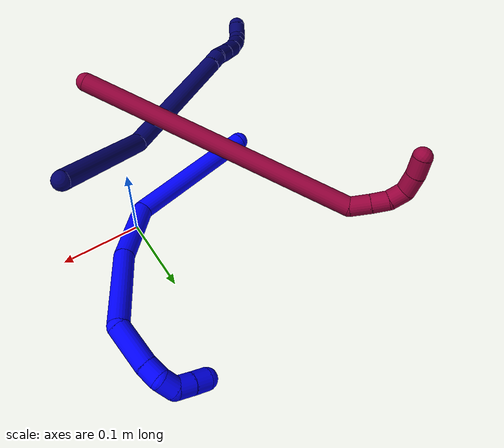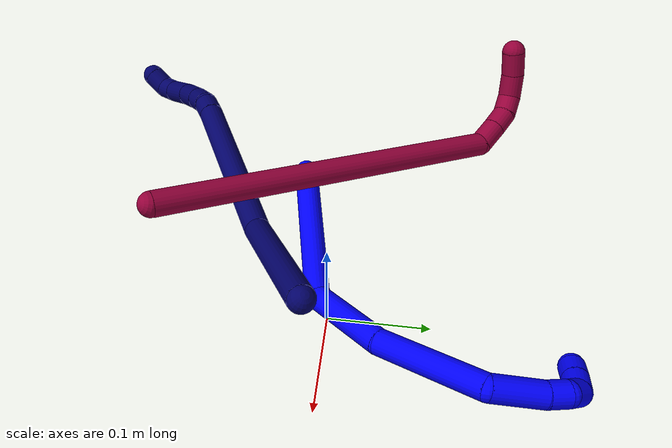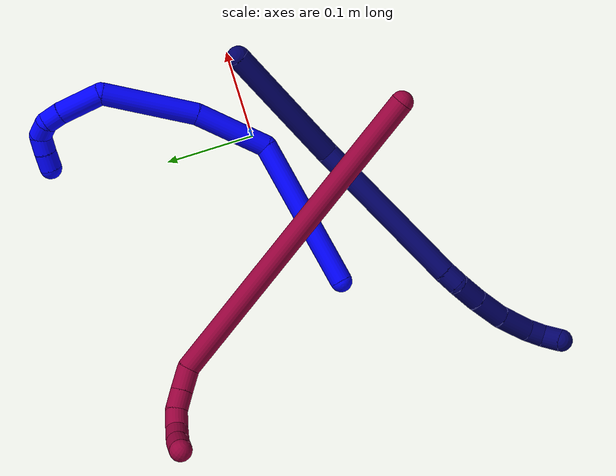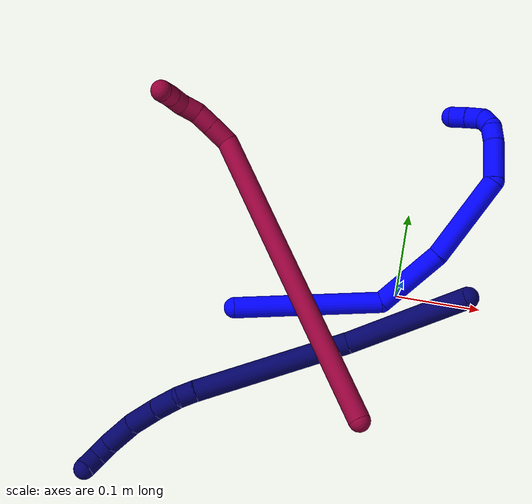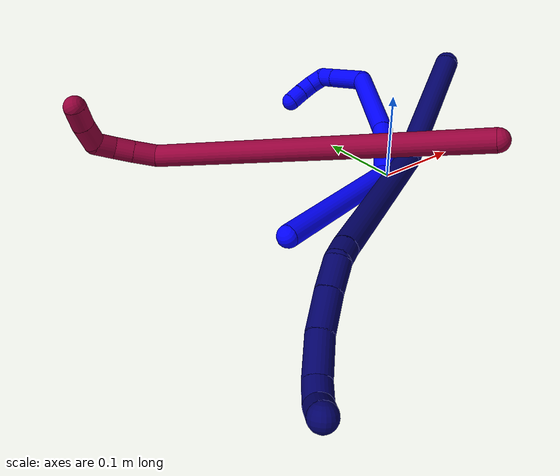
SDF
<sdf version="1.7">
 <world name="default">
  <model name="photoneo_s_sensor">
   <static>1</static>
   <pose>0 0 2 1.57079 1.57079 3.14159</pose>
   <link name="link">
    <inertial><mass>0.1</mass></inertial>
    <sensor name="sensor" type="depth">
     <update_rate>30</update_rate>
     <camera>
      <horizontal_fov>1.22</horizontal_fov>
      <image><width>1920</width><height>1200</height><format>B8G8R8</format></image>
      <clip><near>0.1</near><far>4</far></clip>
      <depth_camera><output>points</output></depth_camera>
     </camera>
     <plugin name="camera_plugin" filename="libgazebo_ros_depth_camera.so">
      <baseline>0.2</baseline>
      <alwaysOn>1</alwaysOn>
      <updateRate>0.0</updateRate>
      <cameraName>camera_ir</cameraName>
      <imageTopicName>/camera/color/image_raw</imageTopicName>
      <cameraInfoTopicName>/camera/color/camera_info</cameraInfoTopicName>
      <depthImageTopicName>/camera/depth/image_raw</depthImageTopicName>
      <depthImageCameraInfoTopicName>/camera/depth/camera_info</depthImageCameraInfoTopicName>
      <pointCloudTopicName>/camera/depth/points</pointCloudTopicName>
      <frameName>fr_optical</frameName>
      <pointCloudCutoff>0.1</pointCloudCutoff>
      <pointCloudCutoffMax>2.0</pointCloudCutoffMax>
      <distortionK1>0</distortionK1>
      <distortionK2>0</distortionK2>
      <distortionK3>0</distortionK3>
      <distortionT1>0</distortionT1>
      <distortionT2>0</distortionT2>
      <CxPrime>0</CxPrime>
      <Cx>0</Cx>
      <Cy>0</Cy>
      <focalLength>0</focalLength>
      <hackBaseline>0</hackBaseline>
     </plugin>
    </sensor>
   </link>
  </model>
  <model name="bin">
   <static>1</static>
   <link name="bottom">
    <collision name="collision-bottom">
     <pose>0 0 -0.01 0 -0 0</pose>
     <geometry><box><size>0.8 0.6 0.02</size></box></geometry>
     <surface>
      <friction><ode><mu>100</mu><mu2>100</mu2></ode></friction>
      <contact><collide_bitmask>65535</collide_bitmask></contact>
     </surface>
    </collision>
   </link>
   <link name="west_wall">
    <collision name="collision-west_wall">
     <pose>-0.41 0 0.1 0 -0 0</pose>
     <geometry><box><size>0.02 0.6 0.2</size></box></geometry>
     <surface>
      <friction><ode><mu>100</mu><mu2>100</mu2></ode></friction>
      <contact><collide_bitmask>65535</collide_bitmask></contact>
     </surface>
    </collision>
   </link>
   <link name="east_wall">
    <collision name="collision-east_wall">
     <pose>0.41 0 0.1 0 -0 0</pose>
     <geometry><box><size>0.02 0.6 0.2</size></box></geometry>
     <surface>
      <friction><ode><mu>100</mu><mu2>100</mu2></ode></friction>
      <contact><collide_bitmask>65535</collide_bitmask></contact>
     </surface>
    </collision>
   </link>
   <link name="south_wall">
    <collision name="collision-south_wall">
     <pose>0 -0.31 0.1 0 -0 0</pose>
     <geometry><box><size>0.8 0.02 0.2</size></box></geometry>
     <surface>
      <friction><ode><mu>100</mu><mu2>100</mu2></ode></friction>
      <contact><collide_bitmask>65535</collide_bitmask></contact>
     </surface>
    </collision>
   </link>
   <link name="north_wall">
    <collision name="collision-north_wall">
     <pose>0 0.31 0.1 0 -0 0</pose>
     <geometry><box><size>0.8 0.02 0.2</size></box></geometry>
     <surface>
      <friction><ode><mu>100</mu><mu2>100</mu2></ode></friction>
      <contact><collide_bitmask>65535</collide_bitmask></contact>
     </surface>
    </collision>
   </link>
  </model>
  <model name="1">
   <static>0</static>
   <link name="1">
    <collision name="collision-cylinder-e_1_1_4">
     <pose>0.072469 0.012462 -0.046433 -2.87939 0.985058 -2.65972</pose>
     <geometry><cylinder><radius>0.0125</radius><length>0.173933</length></cylinder></geometry>
     <surface>
      <friction><ode><mu>1.16</mu><mu2>1.16</mu2><slip1>0</slip1><slip2>0</slip2></ode></friction>
      <contact><ode><kp>1e+06</kp><kd>1</kd><max_vel>0</max_vel><min_depth>0.001</min_depth></ode></contact>
     </surface>
    </collision>
    <visual name="visual-cylinder-e_1_1_4">
     <pose>0.072469 0.012462 -0.046433 -2.87939 0.985058 -2.65972</pose>
     <geometry><cylinder><radius>0.0125</radius><length>0.173933</length></cylinder></geometry>
     <material><ambient>0 0 1 1</ambient></material>
    </visual>
    <collision name="collision-cylinder-e_2_4_5">
     <pose>0.174796 0.054861 -0.101504 -1.85169 0.764071 -0.981082</pose>
     <geometry><cylinder><radius>0.0125</radius><length>0.08631</length></cylinder></geometry>
     <surface>
      <friction><ode><mu>1.16</mu><mu2>1.16</mu2><slip1>0</slip1><slip2>0</slip2></ode></friction>
      <contact><ode><kp>1e+06</kp><kd>1</kd><max_vel>0</max_vel><min_depth>0.001</min_depth></ode></contact>
     </surface>
    </collision>
    <visual name="visual-cylinder-e_2_4_5">
     <pose>0.174796 0.054861 -0.101504 -1.85169 0.764071 -0.981082</pose>
     <geometry><cylinder><radius>0.0125</radius><length>0.08631</length></cylinder></geometry>
     <material><ambient>0 0 1 1</ambient></material>
    </visual>
    <collision name="collision-cylinder-e_3_5_6">
     <pose>0.234532 0.129697 -0.114657 -1.67102 0.584851 -0.642629</pose>
     <geometry><cylinder><radius>0.0125</radius><length>0.108239</length></cylinder></geometry>
     <surface>
      <friction><ode><mu>1.16</mu><mu2>1.16</mu2><slip1>0</slip1><slip2>0</slip2></ode></friction>
      <contact><ode><kp>1e+06</kp><kd>1</kd><max_vel>0</max_vel><min_depth>0.001</min_depth></ode></contact>
     </surface>
    </collision>
    <visual name="visual-cylinder-e_3_5_6">
     <pose>0.234532 0.129697 -0.114657 -1.67102 0.584851 -0.642629</pose>
     <geometry><cylinder><radius>0.0125</radius><length>0.108239</length></cylinder></geometry>
     <material><ambient>0 0 1 1</ambient></material>
    </visual>
    <collision name="collision-cylinder-e_4_6_7">
     <pose>0.260315 0.199475 -0.123147 -1.72923 -0.161099 0.188729</pose>
     <geometry><cylinder><radius>0.0125</radius><length>0.051052</length></cylinder></geometry>
     <surface>
      <friction><ode><mu>1.16</mu><mu2>1.16</mu2><slip1>0</slip1><slip2>0</slip2></ode></friction>
      <contact><ode><kp>1e+06</kp><kd>1</kd><max_vel>0</max_vel><min_depth>0.001</min_depth></ode></contact>
     </surface>
    </collision>
    <visual name="visual-cylinder-e_4_6_7">
     <pose>0.260315 0.199475 -0.123147 -1.72923 -0.161099 0.188729</pose>
     <geometry><cylinder><radius>0.0125</radius><length>0.051052</length></cylinder></geometry>
     <material><ambient>0 0 1 1</ambient></material>
    </visual>
    <collision name="collision-cylinder-e_5_7_8">
     <pose>0.253633 0.234083 -0.127484 -1.60802 -0.25982 0.26956</pose>
     <geometry><cylinder><radius>0.0125</radius><length>0.020144</length></cylinder></geometry>
     <surface>
      <friction><ode><mu>1.16</mu><mu2>1.16</mu2><slip1>0</slip1><slip2>0</slip2></ode></friction>
      <contact><ode><kp>1e+06</kp><kd>1</kd><max_vel>0</max_vel><min_depth>0.001</min_depth></ode></contact>
     </surface>
    </collision>
    <visual name="visual-cylinder-e_5_7_8">
     <pose>0.253633 0.234083 -0.127484 -1.60802 -0.25982 0.26956</pose>
     <geometry><cylinder><radius>0.0125</radius><length>0.020144</length></cylinder></geometry>
     <material><ambient>0 0 1 1</ambient></material>
    </visual>
    <collision name="collision-cylinder-e_6_8_9">
     <pose>0.243856 0.250204 -0.130674 -1.98708 -0.799355 1.1508</pose>
     <geometry><cylinder><radius>0.0125</radius><length>0.020058</length></cylinder></geometry>
     <surface>
      <friction><ode><mu>1.16</mu><mu2>1.16</mu2><slip1>0</slip1><slip2>0</slip2></ode></friction>
      <contact><ode><kp>1e+06</kp><kd>1</kd><max_vel>0</max_vel><min_depth>0.001</min_depth></ode></contact>
     </surface>
    </collision>
    <visual name="visual-cylinder-e_6_8_9">
     <pose>0.243856 0.250204 -0.130674 -1.98708 -0.799355 1.1508</pose>
     <geometry><cylinder><radius>0.0125</radius><length>0.020058</length></cylinder></geometry>
     <material><ambient>0 0 1 1</ambient></material>
    </visual>
    <collision name="collision-cylinder-e_7_9_10">
     <pose>0.226782 0.25774 -0.132273 -0.748848 -1.40285 0.641</pose>
     <geometry><cylinder><radius>0.0125</radius><length>0.020051</length></cylinder></geometry>
     <surface>
      <friction><ode><mu>1.16</mu><mu2>1.16</mu2><slip1>0</slip1><slip2>0</slip2></ode></friction>
      <contact><ode><kp>1e+06</kp><kd>1</kd><max_vel>0</max_vel><min_depth>0.001</min_depth></ode></contact>
     </surface>
    </collision>
    <visual name="visual-cylinder-e_7_9_10">
     <pose>0.226782 0.25774 -0.132273 -0.748848 -1.40285 0.641</pose>
     <geometry><cylinder><radius>0.0125</radius><length>0.020051</length></cylinder></geometry>
     <material><ambient>0 0 1 1</ambient></material>
    </visual>
    <collision name="collision-cylinder-e_8_10_2">
     <pose>0.206866 0.259624 -0.130064 -0.647771 -1.44864 0.577431</pose>
     <geometry><cylinder><radius>0.0125</radius><length>0.020213</length></cylinder></geometry>
     <surface>
      <friction><ode><mu>1.16</mu><mu2>1.16</mu2><slip1>0</slip1><slip2>0</slip2></ode></friction>
      <contact><ode><kp>1e+06</kp><kd>1</kd><max_vel>0</max_vel><min_depth>0.001</min_depth></ode></contact>
     </surface>
    </collision>
    <visual name="visual-cylinder-e_8_10_2">
     <pose>0.206866 0.259624 -0.130064 -0.647771 -1.44864 0.577431</pose>
     <geometry><cylinder><radius>0.0125</radius><length>0.020213</length></cylinder></geometry>
     <material><ambient>0 0 1 1</ambient></material>
    </visual>
    <collision name="collision-sphere-2">
     <pose>0.196834 0.260367 -0.129082 0 -0 0</pose>
     <geometry><sphere><radius>0.0125</radius></sphere></geometry>
     <surface>
      <friction><ode><mu>1.16</mu><mu2>1.16</mu2><slip1>0</slip1><slip2>0</slip2></ode></friction>
      <contact><ode><kp>1e+06</kp><kd>1</kd><max_vel>0</max_vel><min_depth>0.001</min_depth></ode></contact>
     </surface>
    </collision>
    <visual name="visual-sphere-2">
     <pose>0.196834 0.260367 -0.129082 0 -0 0</pose>
     <geometry><sphere><radius>0.0125</radius></sphere></geometry>
     <material><ambient>0 0 1 1</ambient></material>
    </visual>
    <collision name="collision-sphere-10">
     <pose>0.216897 0.258881 -0.131046 0 -0 0</pose>
     <geometry><sphere><radius>0.0125</radius></sphere></geometry>
     <surface>
      <friction><ode><mu>1.16</mu><mu2>1.16</mu2><slip1>0</slip1><slip2>0</slip2></ode></friction>
      <contact><ode><kp>1e+06</kp><kd>1</kd><max_vel>0</max_vel><min_depth>0.001</min_depth></ode></contact>
     </surface>
    </collision>
    <visual name="visual-sphere-10">
     <pose>0.216897 0.258881 -0.131046 0 -0 0</pose>
     <geometry><sphere><radius>0.0125</radius></sphere></geometry>
     <material><ambient>0 0 1 1</ambient></material>
    </visual>
    <collision name="collision-sphere-9">
     <pose>0.236666 0.256599 -0.133501 0 -0 0</pose>
     <geometry><sphere><radius>0.0125</radius></sphere></geometry>
     <surface>
      <friction><ode><mu>1.16</mu><mu2>1.16</mu2><slip1>0</slip1><slip2>0</slip2></ode></friction>
      <contact><ode><kp>1e+06</kp><kd>1</kd><max_vel>0</max_vel><min_depth>0.001</min_depth></ode></contact>
     </surface>
    </collision>
    <visual name="visual-sphere-9">
     <pose>0.236666 0.256599 -0.133501 0 -0 0</pose>
     <geometry><sphere><radius>0.0125</radius></sphere></geometry>
     <material><ambient>0 0 1 1</ambient></material>
    </visual>
    <collision name="collision-sphere-4">
     <pose>0.144939 0.024924 -0.092866 0 -0 0</pose>
     <geometry><sphere><radius>0.0125</radius></sphere></geometry>
     <surface>
      <friction><ode><mu>1.16</mu><mu2>1.16</mu2><slip1>0</slip1><slip2>0</slip2></ode></friction>
      <contact><ode><kp>1e+06</kp><kd>1</kd><max_vel>0</max_vel><min_depth>0.001</min_depth></ode></contact>
     </surface>
    </collision>
    <visual name="visual-sphere-4">
     <pose>0.144939 0.024924 -0.092866 0 -0 0</pose>
     <geometry><sphere><radius>0.0125</radius></sphere></geometry>
     <material><ambient>0 0 1 1</ambient></material>
    </visual>
    <collision name="collision-sphere-1">
     <geometry><sphere><radius>0.0125</radius></sphere></geometry>
     <surface>
      <friction><ode><mu>1.16</mu><mu2>1.16</mu2><slip1>0</slip1><slip2>0</slip2></ode></friction>
      <contact><ode><kp>1e+06</kp><kd>1</kd><max_vel>0</max_vel><min_depth>0.001</min_depth></ode></contact>
     </surface>
    </collision>
    <visual name="visual-sphere-1">
     <geometry><sphere><radius>0.0125</radius></sphere></geometry>
     <material><ambient>0 0 1 1</ambient></material>
    </visual>
    <collision name="collision-sphere-8">
     <pose>0.251046 0.24381 -0.127846 0 -0 0</pose>
     <geometry><sphere><radius>0.0125</radius></sphere></geometry>
     <surface>
      <friction><ode><mu>1.16</mu><mu2>1.16</mu2><slip1>0</slip1><slip2>0</slip2></ode></friction>
      <contact><ode><kp>1e+06</kp><kd>1</kd><max_vel>0</max_vel><min_depth>0.001</min_depth></ode></contact>
     </surface>
    </collision>
    <visual name="visual-sphere-8">
     <pose>0.251046 0.24381 -0.127846 0 -0 0</pose>
     <geometry><sphere><radius>0.0125</radius></sphere></geometry>
     <material><ambient>0 0 1 1</ambient></material>
    </visual>
    <collision name="collision-sphere-5">
     <pose>0.204654 0.084799 -0.110142 0 -0 0</pose>
     <geometry><sphere><radius>0.0125</radius></sphere></geometry>
     <surface>
      <friction><ode><mu>1.16</mu><mu2>1.16</mu2><slip1>0</slip1><slip2>0</slip2></ode></friction>
      <contact><ode><kp>1e+06</kp><kd>1</kd><max_vel>0</max_vel><min_depth>0.001</min_depth></ode></contact>
     </surface>
    </collision>
    <visual name="visual-sphere-5">
     <pose>0.204654 0.084799 -0.110142 0 -0 0</pose>
     <geometry><sphere><radius>0.0125</radius></sphere></geometry>
     <material><ambient>0 0 1 1</ambient></material>
    </visual>
    <collision name="collision-sphere-6">
     <pose>0.26441 0.174595 -0.119172 0 -0 0</pose>
     <geometry><sphere><radius>0.0125</radius></sphere></geometry>
     <surface>
      <friction><ode><mu>1.16</mu><mu2>1.16</mu2><slip1>0</slip1><slip2>0</slip2></ode></friction>
      <contact><ode><kp>1e+06</kp><kd>1</kd><max_vel>0</max_vel><min_depth>0.001</min_depth></ode></contact>
     </surface>
    </collision>
    <visual name="visual-sphere-6">
     <pose>0.26441 0.174595 -0.119172 0 -0 0</pose>
     <geometry><sphere><radius>0.0125</radius></sphere></geometry>
     <material><ambient>0 0 1 1</ambient></material>
    </visual>
    <collision name="collision-sphere-7">
     <pose>0.256221 0.224355 -0.127122 0 -0 0</pose>
     <geometry><sphere><radius>0.0125</radius></sphere></geometry>
     <surface>
      <friction><ode><mu>1.16</mu><mu2>1.16</mu2><slip1>0</slip1><slip2>0</slip2></ode></friction>
      <contact><ode><kp>1e+06</kp><kd>1</kd><max_vel>0</max_vel><min_depth>0.001</min_depth></ode></contact>
     </surface>
    </collision>
    <visual name="visual-sphere-7">
     <pose>0.256221 0.224355 -0.127122 0 -0 0</pose>
     <geometry><sphere><radius>0.0125</radius></sphere></geometry>
     <material><ambient>0 0 1 1</ambient></material>
    </visual>
    <inertial>
     <pose>0.170191 0.102549 -0.092009 0 -0 0</pose>
     <mass>0.5</mass>
     <inertia>
      <ixx>-0.000291</ixx>
      <ixy>0</ixy>
      <ixz>0</ixz>
      <iyy>0.000299</iyy>
      <iyz>0</iyz>
      <izz>-0.000685</izz>
     </inertia>
    </inertial>
   </link>
   <pose>-0.186627 -0.047451 0.011489 0.013098 -0.568216 0.05621</pose>
  </model>
  <model name="7">
   <static>0</static>
   <link name="7">
    <collision name="collision-cylinder-e_1_1_4">
     <pose>-0.047567 -0.010596 -0.056035 2.9547 -0.695185 -2.63535</pose>
     <geometry><cylinder><radius>0.0125</radius><length>0.148524</length></cylinder></geometry>
     <surface>
      <friction><ode><mu>1.16</mu><mu2>1.16</mu2><slip1>0</slip1><slip2>0</slip2></ode></friction>
      <contact><ode><kp>1e+06</kp><kd>1</kd><max_vel>0</max_vel><min_depth>0.001</min_depth></ode></contact>
     </surface>
    </collision>
    <visual name="visual-cylinder-e_1_1_4">
     <pose>-0.047567 -0.010596 -0.056035 2.9547 -0.695185 -2.63535</pose>
     <geometry><cylinder><radius>0.0125</radius><length>0.148524</length></cylinder></geometry>
     <material><ambient>0.003922 0 0.403922 1</ambient></material>
    </visual>
    <collision name="collision-cylinder-e_2_4_5">
     <pose>-0.173359 -0.04758 -0.150063 2.53453 -1.03678 -2.13732</pose>
     <geometry><cylinder><radius>0.0125</radius><length>0.181758</length></cylinder></geometry>
     <surface>
      <friction><ode><mu>1.16</mu><mu2>1.16</mu2><slip1>0</slip1><slip2>0</slip2></ode></friction>
      <contact><ode><kp>1e+06</kp><kd>1</kd><max_vel>0</max_vel><min_depth>0.001</min_depth></ode></contact>
     </surface>
    </collision>
    <visual name="visual-cylinder-e_2_4_5">
     <pose>-0.173359 -0.04758 -0.150063 2.53453 -1.03678 -2.13732</pose>
     <geometry><cylinder><radius>0.0125</radius><length>0.181758</length></cylinder></geometry>
     <material><ambient>0.003922 0 0.403922 1</ambient></material>
    </visual>
    <collision name="collision-cylinder-e_3_5_6">
     <pose>-0.259842 -0.077267 -0.192692 2.52301 -0.967331 -2.04854</pose>
     <geometry><cylinder><radius>0.0125</radius><length>0.020056</length></cylinder></geometry>
     <surface>
      <friction><ode><mu>1.16</mu><mu2>1.16</mu2><slip1>0</slip1><slip2>0</slip2></ode></friction>
      <contact><ode><kp>1e+06</kp><kd>1</kd><max_vel>0</max_vel><min_depth>0.001</min_depth></ode></contact>
     </surface>
    </collision>
    <visual name="visual-cylinder-e_3_5_6">
     <pose>-0.259842 -0.077267 -0.192692 2.52301 -0.967331 -2.04854</pose>
     <geometry><cylinder><radius>0.0125</radius><length>0.020056</length></cylinder></geometry>
     <material><ambient>0.003922 0 0.403922 1</ambient></material>
    </visual>
    <collision name="collision-cylinder-e_4_6_7">
     <pose>-0.277053 -0.084202 -0.209192 2.84434 -0.625088 -2.27377</pose>
     <geometry><cylinder><radius>0.0125</radius><length>0.030604</length></cylinder></geometry>
     <surface>
      <friction><ode><mu>1.16</mu><mu2>1.16</mu2><slip1>0</slip1><slip2>0</slip2></ode></friction>
      <contact><ode><kp>1e+06</kp><kd>1</kd><max_vel>0</max_vel><min_depth>0.001</min_depth></ode></contact>
     </surface>
    </collision>
    <visual name="visual-cylinder-e_4_6_7">
     <pose>-0.277053 -0.084202 -0.209192 2.84434 -0.625088 -2.27377</pose>
     <geometry><cylinder><radius>0.0125</radius><length>0.030604</length></cylinder></geometry>
     <material><ambient>0.003922 0 0.403922 1</ambient></material>
    </visual>
    <collision name="collision-cylinder-e_5_7_8">
     <pose>-0.296149 -0.093069 -0.235805 2.80061 -0.574987 -2.08707</pose>
     <geometry><cylinder><radius>0.0125</radius><length>0.037297</length></cylinder></geometry>
     <surface>
      <friction><ode><mu>1.16</mu><mu2>1.16</mu2><slip1>0</slip1><slip2>0</slip2></ode></friction>
      <contact><ode><kp>1e+06</kp><kd>1</kd><max_vel>0</max_vel><min_depth>0.001</min_depth></ode></contact>
     </surface>
    </collision>
    <visual name="visual-cylinder-e_5_7_8">
     <pose>-0.296149 -0.093069 -0.235805 2.80061 -0.574987 -2.08707</pose>
     <geometry><cylinder><radius>0.0125</radius><length>0.037297</length></cylinder></geometry>
     <material><ambient>0.003922 0 0.403922 1</ambient></material>
    </visual>
    <collision name="collision-cylinder-e_6_8_9">
     <pose>-0.315526 -0.106174 -0.265797 2.66494 -0.493882 -1.60773</pose>
     <geometry><cylinder><radius>0.0125</radius><length>0.038966</length></cylinder></geometry>
     <surface>
      <friction><ode><mu>1.16</mu><mu2>1.16</mu2><slip1>0</slip1><slip2>0</slip2></ode></friction>
      <contact><ode><kp>1e+06</kp><kd>1</kd><max_vel>0</max_vel><min_depth>0.001</min_depth></ode></contact>
     </surface>
    </collision>
    <visual name="visual-cylinder-e_6_8_9">
     <pose>-0.315526 -0.106174 -0.265797 2.66494 -0.493882 -1.60773</pose>
     <geometry><cylinder><radius>0.0125</radius><length>0.038966</length></cylinder></geometry>
     <material><ambient>0.003922 0 0.403922 1</ambient></material>
    </visual>
    <collision name="collision-cylinder-e_7_9_10">
     <pose>-0.330117 -0.12005 -0.287775 2.41337 -0.535524 -1.2479</pose>
     <geometry><cylinder><radius>0.0125</radius><length>0.020985</length></cylinder></geometry>
     <surface>
      <friction><ode><mu>1.16</mu><mu2>1.16</mu2><slip1>0</slip1><slip2>0</slip2></ode></friction>
      <contact><ode><kp>1e+06</kp><kd>1</kd><max_vel>0</max_vel><min_depth>0.001</min_depth></ode></contact>
     </surface>
    </collision>
    <visual name="visual-cylinder-e_7_9_10">
     <pose>-0.330117 -0.12005 -0.287775 2.41337 -0.535524 -1.2479</pose>
     <geometry><cylinder><radius>0.0125</radius><length>0.020985</length></cylinder></geometry>
     <material><ambient>0.003922 0 0.403922 1</ambient></material>
    </visual>
    <collision name="collision-cylinder-e_8_10_2">
     <pose>-0.342309 -0.134548 -0.294702 1.59347 -0.677768 -0.692115</pose>
     <geometry><cylinder><radius>0.0125</radius><length>0.02181</length></cylinder></geometry>
     <surface>
      <friction><ode><mu>1.16</mu><mu2>1.16</mu2><slip1>0</slip1><slip2>0</slip2></ode></friction>
      <contact><ode><kp>1e+06</kp><kd>1</kd><max_vel>0</max_vel><min_depth>0.001</min_depth></ode></contact>
     </surface>
    </collision>
    <visual name="visual-cylinder-e_8_10_2">
     <pose>-0.342309 -0.134548 -0.294702 1.59347 -0.677768 -0.692115</pose>
     <geometry><cylinder><radius>0.0125</radius><length>0.02181</length></cylinder></geometry>
     <material><ambient>0.003922 0 0.403922 1</ambient></material>
    </visual>
    <collision name="collision-sphere-2">
     <pose>-0.349147 -0.143041 -0.294895 0 -0 0</pose>
     <geometry><sphere><radius>0.0125</radius></sphere></geometry>
     <surface>
      <friction><ode><mu>1.16</mu><mu2>1.16</mu2><slip1>0</slip1><slip2>0</slip2></ode></friction>
      <contact><ode><kp>1e+06</kp><kd>1</kd><max_vel>0</max_vel><min_depth>0.001</min_depth></ode></contact>
     </surface>
    </collision>
    <visual name="visual-sphere-2">
     <pose>-0.349147 -0.143041 -0.294895 0 -0 0</pose>
     <geometry><sphere><radius>0.0125</radius></sphere></geometry>
     <material><ambient>0.003922 0 0.403922 1</ambient></material>
    </visual>
    <collision name="collision-sphere-10">
     <pose>-0.335471 -0.126056 -0.294509 0 -0 0</pose>
     <geometry><sphere><radius>0.0125</radius></sphere></geometry>
     <surface>
      <friction><ode><mu>1.16</mu><mu2>1.16</mu2><slip1>0</slip1><slip2>0</slip2></ode></friction>
      <contact><ode><kp>1e+06</kp><kd>1</kd><max_vel>0</max_vel><min_depth>0.001</min_depth></ode></contact>
     </surface>
    </collision>
    <visual name="visual-sphere-10">
     <pose>-0.335471 -0.126056 -0.294509 0 -0 0</pose>
     <geometry><sphere><radius>0.0125</radius></sphere></geometry>
     <material><ambient>0.003922 0 0.403922 1</ambient></material>
    </visual>
    <collision name="collision-sphere-9">
     <pose>-0.324762 -0.114045 -0.28104 0 -0 0</pose>
     <geometry><sphere><radius>0.0125</radius></sphere></geometry>
     <surface>
      <friction><ode><mu>1.16</mu><mu2>1.16</mu2><slip1>0</slip1><slip2>0</slip2></ode></friction>
      <contact><ode><kp>1e+06</kp><kd>1</kd><max_vel>0</max_vel><min_depth>0.001</min_depth></ode></contact>
     </surface>
    </collision>
    <visual name="visual-sphere-9">
     <pose>-0.324762 -0.114045 -0.28104 0 -0 0</pose>
     <geometry><sphere><radius>0.0125</radius></sphere></geometry>
     <material><ambient>0.003922 0 0.403922 1</ambient></material>
    </visual>
    <collision name="collision-sphere-4">
     <pose>-0.095133 -0.021192 -0.11207 0 -0 0</pose>
     <geometry><sphere><radius>0.0125</radius></sphere></geometry>
     <surface>
      <friction><ode><mu>1.16</mu><mu2>1.16</mu2><slip1>0</slip1><slip2>0</slip2></ode></friction>
      <contact><ode><kp>1e+06</kp><kd>1</kd><max_vel>0</max_vel><min_depth>0.001</min_depth></ode></contact>
     </surface>
    </collision>
    <visual name="visual-sphere-4">
     <pose>-0.095133 -0.021192 -0.11207 0 -0 0</pose>
     <geometry><sphere><radius>0.0125</radius></sphere></geometry>
     <material><ambient>0.003922 0 0.403922 1</ambient></material>
    </visual>
    <collision name="collision-sphere-1">
     <geometry><sphere><radius>0.0125</radius></sphere></geometry>
     <surface>
      <friction><ode><mu>1.16</mu><mu2>1.16</mu2><slip1>0</slip1><slip2>0</slip2></ode></friction>
      <contact><ode><kp>1e+06</kp><kd>1</kd><max_vel>0</max_vel><min_depth>0.001</min_depth></ode></contact>
     </surface>
    </collision>
    <visual name="visual-sphere-1">
     <geometry><sphere><radius>0.0125</radius></sphere></geometry>
     <material><ambient>0.003922 0 0.403922 1</ambient></material>
    </visual>
    <collision name="collision-sphere-8">
     <pose>-0.30629 -0.098303 -0.250554 0 -0 0</pose>
     <geometry><sphere><radius>0.0125</radius></sphere></geometry>
     <surface>
      <friction><ode><mu>1.16</mu><mu2>1.16</mu2><slip1>0</slip1><slip2>0</slip2></ode></friction>
      <contact><ode><kp>1e+06</kp><kd>1</kd><max_vel>0</max_vel><min_depth>0.001</min_depth></ode></contact>
     </surface>
    </collision>
    <visual name="visual-sphere-8">
     <pose>-0.30629 -0.098303 -0.250554 0 -0 0</pose>
     <geometry><sphere><radius>0.0125</radius></sphere></geometry>
     <material><ambient>0.003922 0 0.403922 1</ambient></material>
    </visual>
    <collision name="collision-sphere-5">
     <pose>-0.251585 -0.073967 -0.188055 0 -0 0</pose>
     <geometry><sphere><radius>0.0125</radius></sphere></geometry>
     <surface>
      <friction><ode><mu>1.16</mu><mu2>1.16</mu2><slip1>0</slip1><slip2>0</slip2></ode></friction>
      <contact><ode><kp>1e+06</kp><kd>1</kd><max_vel>0</max_vel><min_depth>0.001</min_depth></ode></contact>
     </surface>
    </collision>
    <visual name="visual-sphere-5">
     <pose>-0.251585 -0.073967 -0.188055 0 -0 0</pose>
     <geometry><sphere><radius>0.0125</radius></sphere></geometry>
     <material><ambient>0.003922 0 0.403922 1</ambient></material>
    </visual>
    <collision name="collision-sphere-6">
     <pose>-0.268099 -0.080567 -0.197328 0 -0 0</pose>
     <geometry><sphere><radius>0.0125</radius></sphere></geometry>
     <surface>
      <friction><ode><mu>1.16</mu><mu2>1.16</mu2><slip1>0</slip1><slip2>0</slip2></ode></friction>
      <contact><ode><kp>1e+06</kp><kd>1</kd><max_vel>0</max_vel><min_depth>0.001</min_depth></ode></contact>
     </surface>
    </collision>
    <visual name="visual-sphere-6">
     <pose>-0.268099 -0.080567 -0.197328 0 -0 0</pose>
     <geometry><sphere><radius>0.0125</radius></sphere></geometry>
     <material><ambient>0.003922 0 0.403922 1</ambient></material>
    </visual>
    <collision name="collision-sphere-7">
     <pose>-0.286007 -0.087836 -0.221057 0 -0 0</pose>
     <geometry><sphere><radius>0.0125</radius></sphere></geometry>
     <surface>
      <friction><ode><mu>1.16</mu><mu2>1.16</mu2><slip1>0</slip1><slip2>0</slip2></ode></friction>
      <contact><ode><kp>1e+06</kp><kd>1</kd><max_vel>0</max_vel><min_depth>0.001</min_depth></ode></contact>
     </surface>
    </collision>
    <visual name="visual-sphere-7">
     <pose>-0.286007 -0.087836 -0.221057 0 -0 0</pose>
     <geometry><sphere><radius>0.0125</radius></sphere></geometry>
     <material><ambient>0.003922 0 0.403922 1</ambient></material>
    </visual>
    <inertial>
     <pose>-0.179996 -0.054821 -0.154965 0 -0 0</pose>
     <mass>0.5</mass>
     <inertia>
      <ixx>-0.000693</ixx>
      <ixy>0</ixy>
      <ixz>0</ixz>
      <iyy>0.000352</iyy>
      <iyz>0</iyz>
      <izz>0.000799</izz>
     </inertia>
    </inertial>
   </link>
   <pose>0.071352 -0.011243 0.127959 -0.319307 0.339641 0.0568</pose>
  </model>
  <model name="8">
   <static>0</static>
   <link name="8">
    <collision name="collision-cylinder-e_1_1_4">
     <pose>-0.061592 -0.005492 0.177197 0.030981 -0.33438 -0.005229</pose>
     <geometry><cylinder><radius>0.0125</radius><length>0.375353</length></cylinder></geometry>
     <surface>
      <friction><ode><mu>1.16</mu><mu2>1.16</mu2><slip1>0</slip1><slip2>0</slip2></ode></friction>
      <contact><ode><kp>1e+06</kp><kd>1</kd><max_vel>0</max_vel><min_depth>0.001</min_depth></ode></contact>
     </surface>
    </collision>
    <visual name="visual-cylinder-e_1_1_4">
     <pose>-0.061592 -0.005492 0.177197 0.030981 -0.33438 -0.005229</pose>
     <geometry><cylinder><radius>0.0125</radius><length>0.375353</length></cylinder></geometry>
     <material><ambient>0.584314 0 0.227451 1</ambient></material>
    </visual>
    <collision name="collision-cylinder-e_2_4_5">
     <pose>-0.132386 -0.006313 0.363296 -0.483075 -0.741178 0.19085</pose>
     <geometry><cylinder><radius>0.0125</radius><length>0.027255</length></cylinder></geometry>
     <surface>
      <friction><ode><mu>1.16</mu><mu2>1.16</mu2><slip1>0</slip1><slip2>0</slip2></ode></friction>
      <contact><ode><kp>1e+06</kp><kd>1</kd><max_vel>0</max_vel><min_depth>0.001</min_depth></ode></contact>
     </surface>
    </collision>
    <visual name="visual-cylinder-e_2_4_5">
     <pose>-0.132386 -0.006313 0.363296 -0.483075 -0.741178 0.19085</pose>
     <geometry><cylinder><radius>0.0125</radius><length>0.027255</length></cylinder></geometry>
     <material><ambient>0.584314 0 0.227451 1</ambient></material>
    </visual>
    <collision name="collision-cylinder-e_3_5_6">
     <pose>-0.149354 0.002344 0.378971 -0.532134 -0.779548 0.222976</pose>
     <geometry><cylinder><radius>0.0125</radius><length>0.0221</length></cylinder></geometry>
     <surface>
      <friction><ode><mu>1.16</mu><mu2>1.16</mu2><slip1>0</slip1><slip2>0</slip2></ode></friction>
      <contact><ode><kp>1e+06</kp><kd>1</kd><max_vel>0</max_vel><min_depth>0.001</min_depth></ode></contact>
     </surface>
    </collision>
    <visual name="visual-cylinder-e_3_5_6">
     <pose>-0.149354 0.002344 0.378971 -0.532134 -0.779548 0.222976</pose>
     <geometry><cylinder><radius>0.0125</radius><length>0.0221</length></cylinder></geometry>
     <material><ambient>0.584314 0 0.227451 1</ambient></material>
    </visual>
    <collision name="collision-cylinder-e_4_6_7">
     <pose>-0.165247 0.012818 0.389883 -1.00283 -0.812618 0.463214</pose>
     <geometry><cylinder><radius>0.0125</radius><length>0.022382</length></cylinder></geometry>
     <surface>
      <friction><ode><mu>1.16</mu><mu2>1.16</mu2><slip1>0</slip1><slip2>0</slip2></ode></friction>
      <contact><ode><kp>1e+06</kp><kd>1</kd><max_vel>0</max_vel><min_depth>0.001</min_depth></ode></contact>
     </surface>
    </collision>
    <visual name="visual-cylinder-e_4_6_7">
     <pose>-0.165247 0.012818 0.389883 -1.00283 -0.812618 0.463214</pose>
     <geometry><cylinder><radius>0.0125</radius><length>0.022382</length></cylinder></geometry>
     <material><ambient>0.584314 0 0.227451 1</ambient></material>
    </visual>
    <collision name="collision-cylinder-e_5_7_8">
     <pose>-0.185871 0.023045 0.390163 -2.37167 -1.1647 2.03844</pose>
     <geometry><cylinder><radius>0.0125</radius><length>0.02721</length></cylinder></geometry>
     <surface>
      <friction><ode><mu>1.16</mu><mu2>1.16</mu2><slip1>0</slip1><slip2>0</slip2></ode></friction>
      <contact><ode><kp>1e+06</kp><kd>1</kd><max_vel>0</max_vel><min_depth>0.001</min_depth></ode></contact>
     </surface>
    </collision>
    <visual name="visual-cylinder-e_5_7_8">
     <pose>-0.185871 0.023045 0.390163 -2.37167 -1.1647 2.03844</pose>
     <geometry><cylinder><radius>0.0125</radius><length>0.02721</length></cylinder></geometry>
     <material><ambient>0.584314 0 0.227451 1</ambient></material>
    </visual>
    <collision name="collision-cylinder-e_6_8_2">
     <pose>-0.209406 0.030278 0.380727 -2.58229 -1.03315 2.20539</pose>
     <geometry><cylinder><radius>0.0125</radius><length>0.0257</length></cylinder></geometry>
     <surface>
      <friction><ode><mu>1.16</mu><mu2>1.16</mu2><slip1>0</slip1><slip2>0</slip2></ode></friction>
      <contact><ode><kp>1e+06</kp><kd>1</kd><max_vel>0</max_vel><min_depth>0.001</min_depth></ode></contact>
     </surface>
    </collision>
    <visual name="visual-cylinder-e_6_8_2">
     <pose>-0.209406 0.030278 0.380727 -2.58229 -1.03315 2.20539</pose>
     <geometry><cylinder><radius>0.0125</radius><length>0.0257</length></cylinder></geometry>
     <material><ambient>0.584314 0 0.227451 1</ambient></material>
    </visual>
    <collision name="collision-sphere-2">
     <pose>-0.220444 0.03377 0.375149 0 -0 0</pose>
     <geometry><sphere><radius>0.0125</radius></sphere></geometry>
     <surface>
      <friction><ode><mu>1.16</mu><mu2>1.16</mu2><slip1>0</slip1><slip2>0</slip2></ode></friction>
      <contact><ode><kp>1e+06</kp><kd>1</kd><max_vel>0</max_vel><min_depth>0.001</min_depth></ode></contact>
     </surface>
    </collision>
    <visual name="visual-sphere-2">
     <pose>-0.220444 0.03377 0.375149 0 -0 0</pose>
     <geometry><sphere><radius>0.0125</radius></sphere></geometry>
     <material><ambient>0.584314 0 0.227451 1</ambient></material>
    </visual>
    <collision name="collision-sphere-4">
     <pose>-0.123185 -0.010983 0.354394 0 -0 0</pose>
     <geometry><sphere><radius>0.0125</radius></sphere></geometry>
     <surface>
      <friction><ode><mu>1.16</mu><mu2>1.16</mu2><slip1>0</slip1><slip2>0</slip2></ode></friction>
      <contact><ode><kp>1e+06</kp><kd>1</kd><max_vel>0</max_vel><min_depth>0.001</min_depth></ode></contact>
     </surface>
    </collision>
    <visual name="visual-sphere-4">
     <pose>-0.123185 -0.010983 0.354394 0 -0 0</pose>
     <geometry><sphere><radius>0.0125</radius></sphere></geometry>
     <material><ambient>0.584314 0 0.227451 1</ambient></material>
    </visual>
    <collision name="collision-sphere-1">
     <geometry><sphere><radius>0.0125</radius></sphere></geometry>
     <surface>
      <friction><ode><mu>1.16</mu><mu2>1.16</mu2><slip1>0</slip1><slip2>0</slip2></ode></friction>
      <contact><ode><kp>1e+06</kp><kd>1</kd><max_vel>0</max_vel><min_depth>0.001</min_depth></ode></contact>
     </surface>
    </collision>
    <visual name="visual-sphere-1">
     <geometry><sphere><radius>0.0125</radius></sphere></geometry>
     <material><ambient>0.584314 0 0.227451 1</ambient></material>
    </visual>
    <collision name="collision-sphere-8">
     <pose>-0.198369 0.026786 0.386305 0 -0 0</pose>
     <geometry><sphere><radius>0.0125</radius></sphere></geometry>
     <surface>
      <friction><ode><mu>1.16</mu><mu2>1.16</mu2><slip1>0</slip1><slip2>0</slip2></ode></friction>
      <contact><ode><kp>1e+06</kp><kd>1</kd><max_vel>0</max_vel><min_depth>0.001</min_depth></ode></contact>
     </surface>
    </collision>
    <visual name="visual-sphere-8">
     <pose>-0.198369 0.026786 0.386305 0 -0 0</pose>
     <geometry><sphere><radius>0.0125</radius></sphere></geometry>
     <material><ambient>0.584314 0 0.227451 1</ambient></material>
    </visual>
    <collision name="collision-sphere-5">
     <pose>-0.141586 -0.001644 0.372199 0 -0 0</pose>
     <geometry><sphere><radius>0.0125</radius></sphere></geometry>
     <surface>
      <friction><ode><mu>1.16</mu><mu2>1.16</mu2><slip1>0</slip1><slip2>0</slip2></ode></friction>
      <contact><ode><kp>1e+06</kp><kd>1</kd><max_vel>0</max_vel><min_depth>0.001</min_depth></ode></contact>
     </surface>
    </collision>
    <visual name="visual-sphere-5">
     <pose>-0.141586 -0.001644 0.372199 0 -0 0</pose>
     <geometry><sphere><radius>0.0125</radius></sphere></geometry>
     <material><ambient>0.584314 0 0.227451 1</ambient></material>
    </visual>
    <collision name="collision-sphere-6">
     <pose>-0.157122 0.006331 0.385744 0 -0 0</pose>
     <geometry><sphere><radius>0.0125</radius></sphere></geometry>
     <surface>
      <friction><ode><mu>1.16</mu><mu2>1.16</mu2><slip1>0</slip1><slip2>0</slip2></ode></friction>
      <contact><ode><kp>1e+06</kp><kd>1</kd><max_vel>0</max_vel><min_depth>0.001</min_depth></ode></contact>
     </surface>
    </collision>
    <visual name="visual-sphere-6">
     <pose>-0.157122 0.006331 0.385744 0 -0 0</pose>
     <geometry><sphere><radius>0.0125</radius></sphere></geometry>
     <material><ambient>0.584314 0 0.227451 1</ambient></material>
    </visual>
    <collision name="collision-sphere-7">
     <pose>-0.173373 0.019304 0.394022 0 -0 0</pose>
     <geometry><sphere><radius>0.0125</radius></sphere></geometry>
     <surface>
      <friction><ode><mu>1.16</mu><mu2>1.16</mu2><slip1>0</slip1><slip2>0</slip2></ode></friction>
      <contact><ode><kp>1e+06</kp><kd>1</kd><max_vel>0</max_vel><min_depth>0.001</min_depth></ode></contact>
     </surface>
    </collision>
    <visual name="visual-sphere-7">
     <pose>-0.173373 0.019304 0.394022 0 -0 0</pose>
     <geometry><sphere><radius>0.0125</radius></sphere></geometry>
     <material><ambient>0.584314 0 0.227451 1</ambient></material>
    </visual>
    <inertial>
     <pose>-0.088331 -0.000979 0.227831 0 -0 0</pose>
     <mass>0.5</mass>
     <inertia>
      <ixx>0.004144</ixx>
      <ixy>0</ixy>
      <ixz>0</ixz>
      <iyy>0.004414</iyy>
      <iyz>0</iyz>
      <izz>0.001615</izz>
     </inertia>
    </inertial>
   </link>
   <pose>-0.023423 -0.162486 0.115253 -3.07171 1.02857 -0.884004</pose>
  </model>
 </world>
</sdf>
